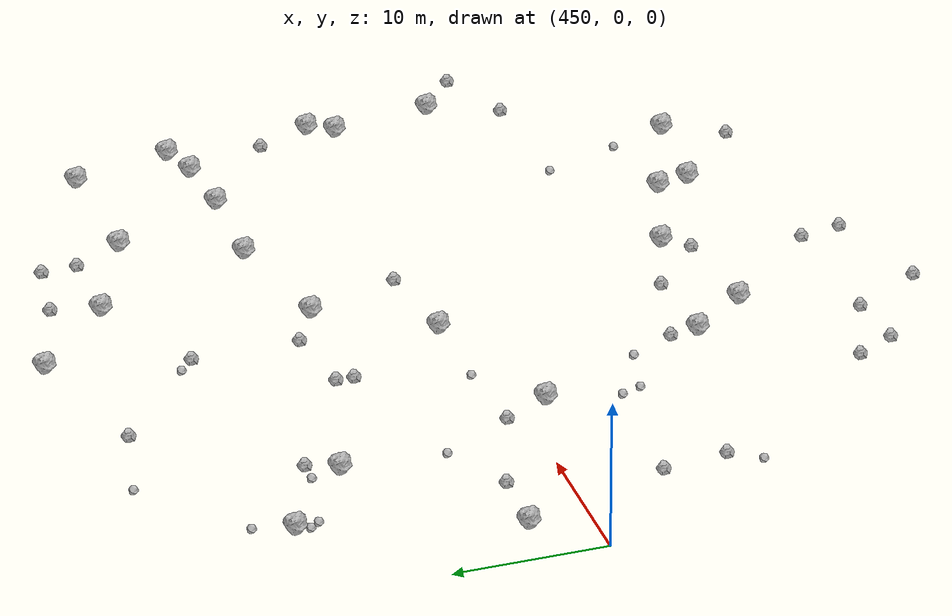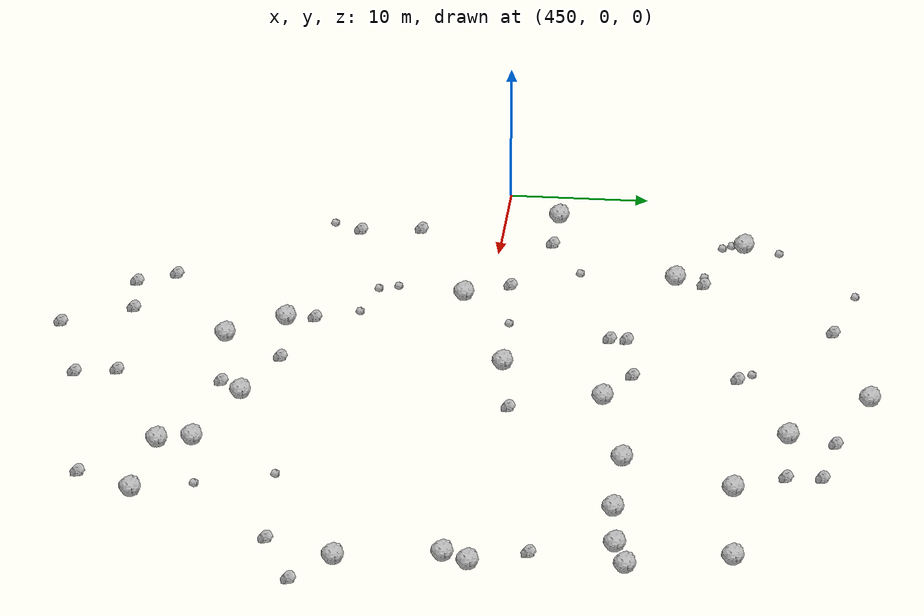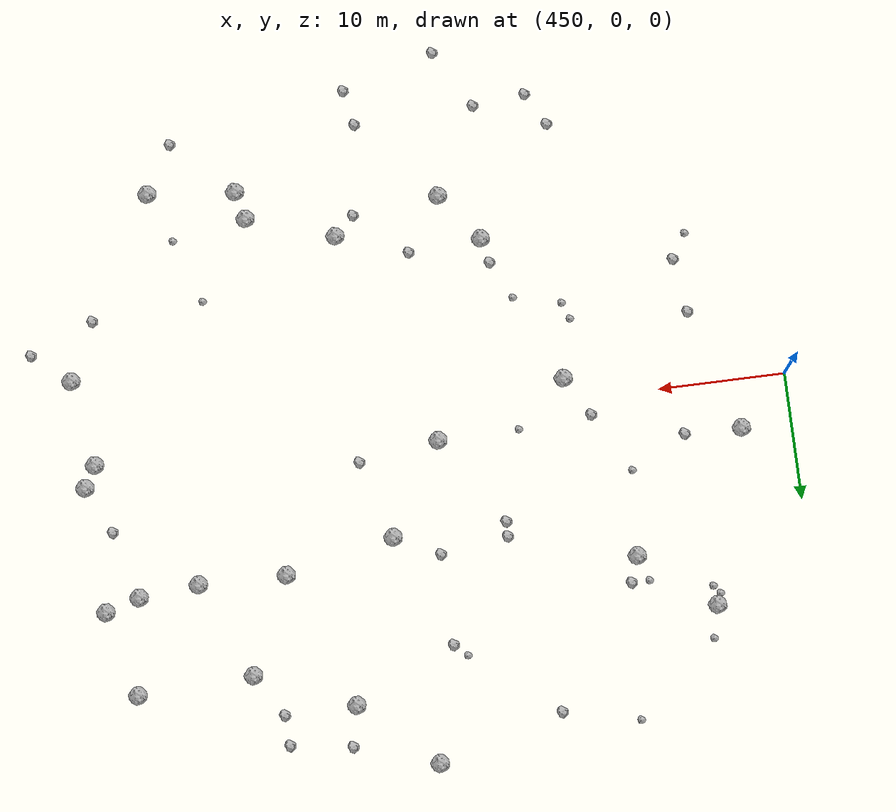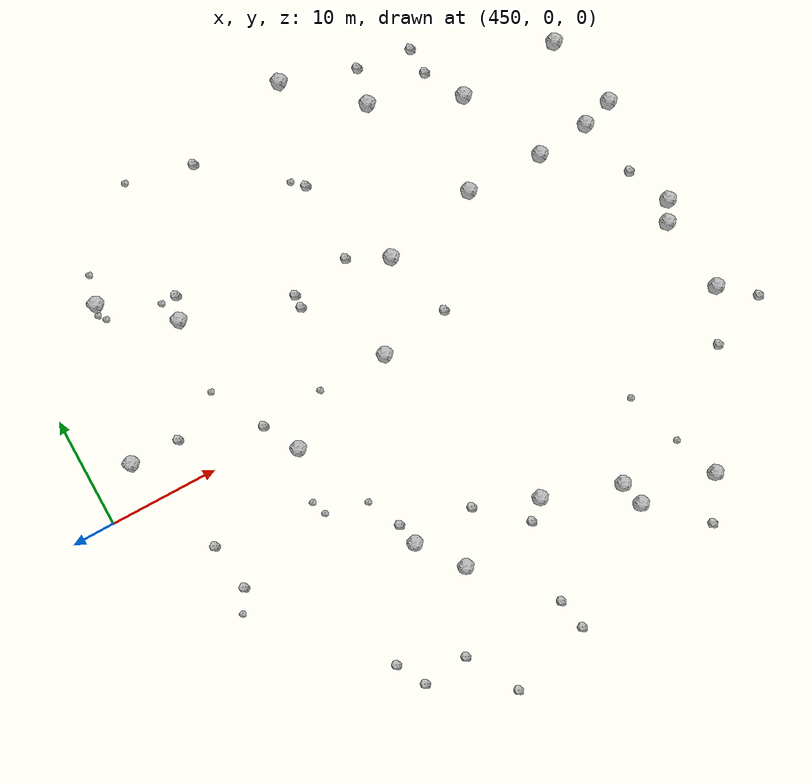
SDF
<sdf version="1.6">
 <world name="default">
  <include><uri>model://sun</uri></include>
  <model name="rock1_12_4">
   <include><uri>model://rock1</uri><pose>497.63918403895997 10.923898166247476 0.5 0 0 0</pose></include>
  </model>
  <model name="rock1_12_5">
   <include><uri>model://rock1</uri><pose>457.7446431405681 17.416867066677952 0.5 0 0 0</pose></include>
  </model>
  <model name="rock1_12_6">
   <include><uri>model://rock1</uri><pose>505.73492498413276 -6.236936628468683 0.5 0 0 0</pose></include>
  </model>
  <model name="rock1_12_7">
   <include><uri>model://rock1</uri><pose>498.1351416837895 -20.420841297899795 0.5 0 0 0</pose></include>
  </model>
  <model name="rock1_12_8">
   <include><uri>model://rock1</uri><pose>490.7558495475496 11.009738109359354 0.5 0 0 0</pose></include>
  </model>
  <model name="rock1_12_9">
   <include><uri>model://rock1</uri><pose>505.56302760927684 2.2989802542652953 0.5 0 0 0</pose></include>
  </model>
  <model name="rock1_12_10">
   <include><uri>model://rock1</uri><pose>472.3777872710196 -13.659304088289211 0.5 0 0 0</pose></include>
  </model>
  <model name="rock1_12_11">
   <include><uri>model://rock1</uri><pose>486.53955317054636 21.74687847294617 0.5 0 0 0</pose></include>
  </model>
  <model name="rock1_12_12">
   <include><uri>model://rock1</uri><pose>504.62010613100966 0.6022516160187621 0.5 0 0 0</pose></include>
  </model>
  <model name="rock1_12_13">
   <include><uri>model://rock1</uri><pose>491.2164233325795 -19.763774460705527 0.5 0 0 0</pose></include>
  </model>
  <model name="rock1_12_14">
   <include><uri>model://rock1</uri><pose>480.6861252851641 26.985571988664454 0.5 0 0 0</pose></include>
  </model>
  <model name="rock1_12_15">
   <include><uri>model://rock1</uri><pose>490.644969798037 -17.51322194524959 0.5 0 0 0</pose></include>
  </model>
  <model name="rock1_12_16">
   <include><uri>model://rock1</uri><pose>482.14200542719055 9.094603515054914 0.5 0 0 0</pose></include>
  </model>
  <model name="rock1_12_17">
   <include><uri>model://rock1</uri><pose>483.75802626033135 -15.246898836387853 0.5 0 0 0</pose></include>
  </model>
  <model name="rock1_12_18">
   <include><uri>model://rock1</uri><pose>467.3383881906736 -1.7498943778065552 0.5 0 0 0</pose></include>
  </model>
  <model name="rock1_12_19">
   <include><uri>model://rock1</uri><pose>475.3059895995748 -17.49841457888121 0.5 0 0 0</pose></include>
  </model>
  <model name="rock1_12_20">
   <include><uri>model://rock1</uri><pose>494.2067437365619 18.486505339984284 0.5 0 0 0</pose></include>
  </model>
  <model name="rock1_12_21">
   <include><uri>model://rock1</uri><pose>453.9897101727923 3.8533910790346084 0.5 0 0 0</pose></include>
  </model>
  <model name="rock1_12_22">
   <include><uri>model://rock1</uri><pose>505.02083062821134 12.203676749705693 0.5 0 0 0</pose></include>
  </model>
  <model name="rock1_12_23">
   <include><uri>model://rock1</uri><pose>477.71917473108635 1.9347852392608011 0.5 0 0 0</pose></include>
  </model>
  <model name="rock1_12_24">
   <include><uri>model://rock1</uri><pose>502.3287460828152 11.371391065693892 0.5 0 0 0</pose></include>
  </model>
  <model name="rock1_12_25">
   <include><uri>model://rock1</uri><pose>503.268413580094 18.925862739320984 0.5 0 0 0</pose></include>
  </model>
  <model name="rock1_12_26">
   <include><uri>model://rock1</uri><pose>463.43525854002866 12.859650740391935 0.5 0 0 0</pose></include>
  </model>
  <model name="rock2_12_0">
   <include><uri>model://rock2</uri><pose>478.48412191771064 18.013619897784885 0.3 0 0 0</pose></include>
  </model>
  <model name="rock2_12_1">
   <include><uri>model://rock2</uri><pose>474.30055864911526 -29.129671032093206 0.3 0 0 0</pose></include>
  </model>
  <model name="rock2_12_2">
   <include><uri>model://rock2</uri><pose>473.20142693225176 8.931918955432216 0.3 0 0 0</pose></include>
  </model>
  <model name="rock2_12_3">
   <include><uri>model://rock2</uri><pose>487.17096137645086 24.92023798776073 0.3 0 0 0</pose></include>
  </model>
  <model name="rock2_12_4">
   <include><uri>model://rock2</uri><pose>465.9903818556924 -22.265033862845687 0.3 0 0 0</pose></include>
  </model>
  <model name="rock2_12_5">
   <include><uri>model://rock2</uri><pose>481.15946830979925 -24.05967150653789 0.3 0 0 0</pose></include>
  </model>
  <model name="rock2_12_6">
   <include><uri>model://rock2</uri><pose>481.7214715010744 -26.900866731158118 0.3 0 0 0</pose></include>
  </model>
  <model name="rock2_12_7">
   <include><uri>model://rock2</uri><pose>482.1503758203879 -16.770757836486084 0.3 0 0 0</pose></include>
  </model>
  <model name="rock2_12_8">
   <include><uri>model://rock2</uri><pose>456.9213731570425 -5.84575193117422 0.3 0 0 0</pose></include>
  </model>
  <model name="rock2_12_9">
   <include><uri>model://rock2</uri><pose>492.13662483081976 21.837443070401434 0.3 0 0 0</pose></include>
  </model>
  <model name="rock2_12_10">
   <include><uri>model://rock2</uri><pose>464.111511056583 14.899893999594447 0.3 0 0 0</pose></include>
  </model>
  <model name="rock2_12_11">
   <include><uri>model://rock2</uri><pose>465.5212307324692 1.3742644154474455 0.3 0 0 0</pose></include>
  </model>
  <model name="rock2_12_12">
   <include><uri>model://rock2</uri><pose>473.235180810152 10.10394201572764 0.3 0 0 0</pose></include>
  </model>
  <model name="rock2_12_13">
   <include><uri>model://rock2</uri><pose>478.5744167239659 10.873225551686616 0.3 0 0 0</pose></include>
  </model>
  <model name="rock2_12_14">
   <include><uri>model://rock2</uri><pose>495.8987076808545 -24.24351305965233 0.3 0 0 0</pose></include>
  </model>
  <model name="rock2_12_15">
   <include><uri>model://rock2</uri><pose>478.1346845996307 -13.264929858988857 0.3 0 0 0</pose></include>
  </model>
  <model name="rock2_12_16">
   <include><uri>model://rock2</uri><pose>484.0213454298488 2.9078278603521213 0.3 0 0 0</pose></include>
  </model>
  <model name="rock2_12_17">
   <include><uri>model://rock2</uri><pose>467.4281443385494 -24.881597222575557 0.3 0 0 0</pose></include>
  </model>
  <model name="rock2_12_18">
   <include><uri>model://rock2</uri><pose>470.76901566303115 24.215991127729822 0.3 0 0 0</pose></include>
  </model>
  <model name="rock2_12_19">
   <include><uri>model://rock2</uri><pose>508.63424905053046 -8.668152335532746 0.3 0 0 0</pose></include>
  </model>
  <model name="rock2_12_20">
   <include><uri>model://rock2</uri><pose>503.79482177483294 6.025226229573597 0.3 0 0 0</pose></include>
  </model>
  <model name="rock2_12_21">
   <include><uri>model://rock2</uri><pose>471.8969817466397 -11.681128427040356 0.3 0 0 0</pose></include>
  </model>
  <model name="rock2_12_22">
   <include><uri>model://rock2</uri><pose>492.00136038848655 24.221374176454653 0.3 0 0 0</pose></include>
  </model>
  <model name="rock2_12_23">
   <include><uri>model://rock2</uri><pose>458.4432003435678 3.777568894880332 0.3 0 0 0</pose></include>
  </model>
  <model name="rock2_12_24">
   <include><uri>model://rock2</uri><pose>457.495642632642 -10.17330781975707 0.3 0 0 0</pose></include>
  </model>
  <model name="rock2_12_25">
   <include><uri>model://rock2</uri><pose>471.61999089238844 -24.443147390581657 0.3 0 0 0</pose></include>
  </model>
  <model name="rock2_12_26">
   <include><uri>model://rock2</uri><pose>503.55762345283824 -10.805875458957736 0.3 0 0 0</pose></include>
  </model>
  <model name="rock3_12_0">
   <include><uri>model://rock3</uri><pose>471.27314303703116 1.7852739894782204 0.2 0 0 0</pose></include>
  </model>
  <model name="rock3_12_1">
   <include><uri>model://rock3</uri><pose>456.27602500205813 -12.190708413858925 0.2 0 0 0</pose></include>
  </model>
  <model name="rock3_12_2">
   <include><uri>model://rock3</uri><pose>457.807087433091 15.8721333450776 0.2 0 0 0</pose></include>
  </model>
  <model name="rock3_12_3">
   <include><uri>model://rock3</uri><pose>477.45450166308495 18.910314086424876 0.2 0 0 0</pose></include>
  </model>
  <model name="rock3_12_4">
   <include><uri>model://rock3</uri><pose>458.2951138538543 19.94618080335171 0.2 0 0 0</pose></include>
  </model>
  <model name="rock3_12_5">
   <include><uri>model://rock3</uri><pose>494.7203000584127 -11.394522007474531 0.2 0 0 0</pose></include>
  </model>
  <model name="rock3_12_6">
   <include><uri>model://rock3</uri><pose>496.5121406176124 -16.502611437698015 0.2 0 0 0</pose></include>
  </model>
  <model name="rock3_12_7">
   <include><uri>model://rock3</uri><pose>470.4166380576403 -8.712503741254515 0.2 0 0 0</pose></include>
  </model>
  <model name="rock3_12_8">
   <include><uri>model://rock3</uri><pose>466.64924105906454 -7.8239826099687235 0.2 0 0 0</pose></include>
  </model>
  <model name="rock3_12_9">
   <include><uri>model://rock3</uri><pose>462.6823396220122 14.841113264436785 0.2 0 0 0</pose></include>
  </model>
  <model name="rock3_12_10">
   <include><uri>model://rock3</uri><pose>464.75187250333033 25.5298355366755 0.2 0 0 0</pose></include>
  </model>
  <model name="rock3_12_11">
   <include><uri>model://rock3</uri><pose>466.15846563693395 -6.4808638716517315 0.2 0 0 0</pose></include>
  </model>
  <model name="rock3_12_12">
   <include><uri>model://rock3</uri><pose>462.8719250022177 6.0854162143403485 0.2 0 0 0</pose></include>
  </model>
  <model name="rock3_12_13">
   <include><uri>model://rock3</uri><pose>457.3297928094691 16.50317812383655 0.2 0 0 0</pose></include>
  </model>
 </world>
</sdf>
